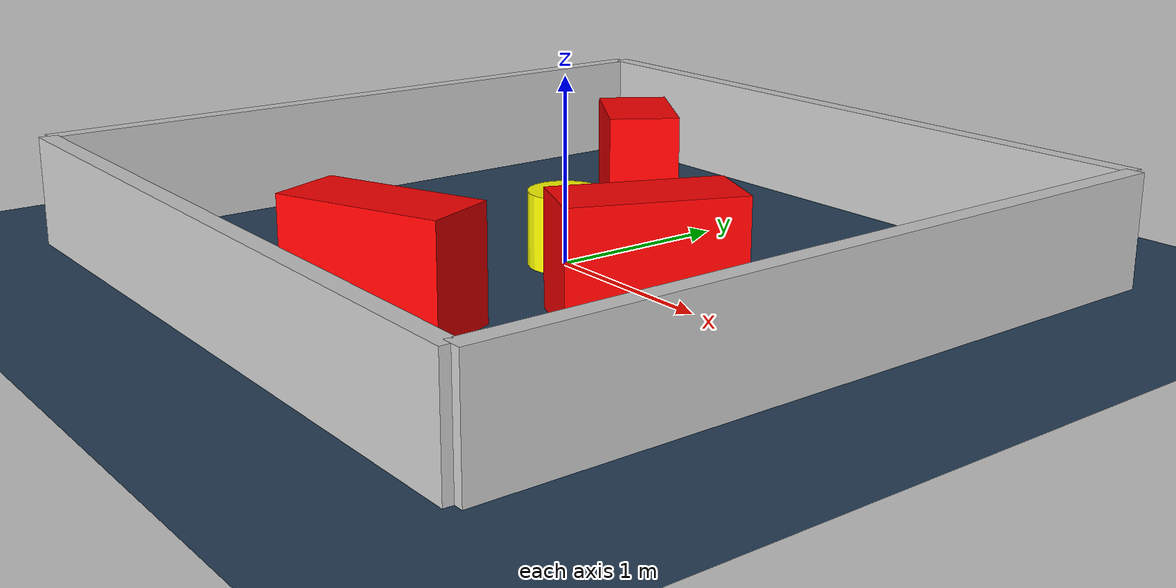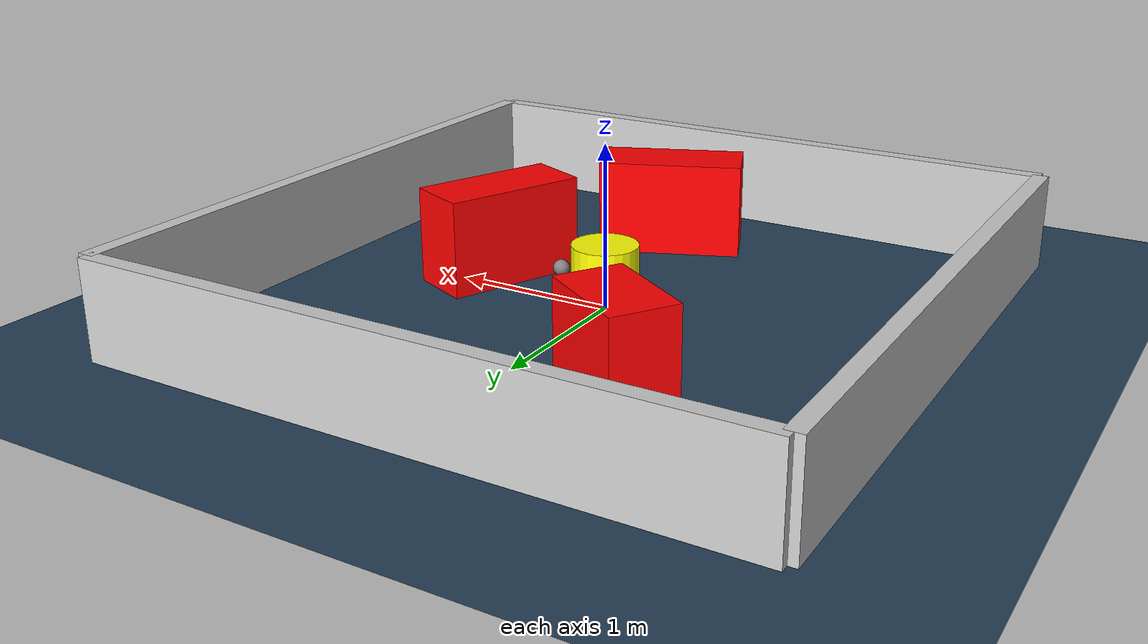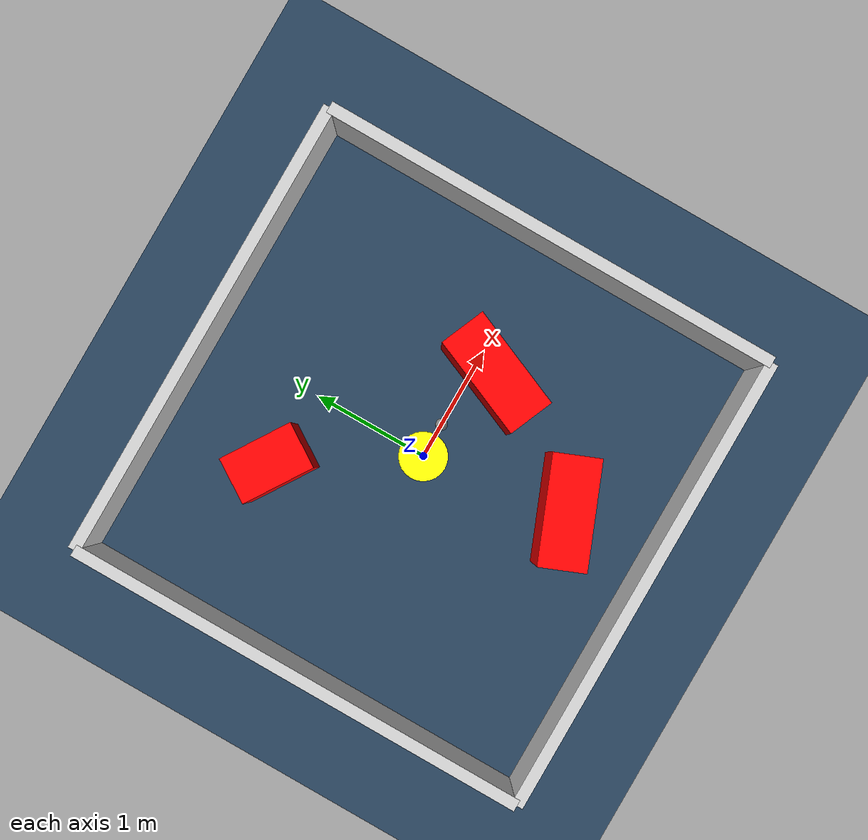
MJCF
<?xml version="1.0" ?>
<mujoco model="generated_environment">
  <option timestep="0.01" integrator="RK4" cone="elliptic"/>
  <default>
    <geom density="1"/>
  </default>
  <asset>
    <texture builtin="gradient" height="3072" rgb1="0.3 0.5 0.7" rgb2="0 0 0" type="skybox" width="512"/>
    <texture builtin="checker" height="300" mark="edge" markrgb="0.8 0.8 0.8" name="groundplane" rgb1="0.2 0.3 0.4" rgb2="0.1 0.2 0.3" type="2d" width="300"/>
    <material name="groundplane" reflectance="0.2" texrepeat="5 5" texture="groundplane" texuniform="true"/>
    <material name="robot" rgba="0.0 1.0 0.0 1"/>
  </asset>
  <worldbody>
    <light dir="0 0 -1" directional="true" pos="0 0 1.5"/>
    <geom condim="4" friction="1.0 0.005 0.001" material="groundplane" name="floor" size="0 0 0.05" type="plane"/>
    <body name="walls">
      <geom name="wall_1" condim="4" pos="-2.0 0.0 0.3" rgba="0.800000011920929 0.800000011920929 0.800000011920929 1.0" size="0.05 2.0 0.3" type="box"/>
      <geom name="wall_2" condim="4" pos="2.0 0.0 0.3" rgba="0.800000011920929 0.800000011920929 0.800000011920929 1.0" size="0.05 2.0 0.3" type="box"/>
      <geom name="wall_3" condim="4" pos="0.0 -2.0 0.3" rgba="0.800000011920929 0.800000011920929 0.800000011920929 1.0" size="2.0 0.05 0.3" type="box"/>
      <geom name="wall_4" condim="4" pos="0.0 2.0 0.3" rgba="0.800000011920929 0.800000011920929 0.800000011920929 1.0" size="2.0 0.05 0.3" type="box"/>
    </body>
    <body name="robot">
      <joint name="joint_x" type="slide" pos="0 0 0" axis="1 0 0"/>
      <joint name="joint_y" type="slide" pos="0 0 0" axis="0 1 0"/>
      <geom name="robot" type="sphere" pos="0.3 0.0 0.2" size="0.05" mass="5." friction="1.0 0.005 0.0001" condim="4" rgba="0.5 0.5 0.5 1.0"/>
      <site name="sensor_ball"/>
    </body>
    <body name="obstacle_movable_1">
      <geom name="obstacle_movable_1" condim="4" pos="0.0 0.0 0.2" euler="0 0 0.0" friction="1.0 0.005 0.001" rgba="1.0 1.0 0.0 1.0" size="0.2 0.2 0.0" type="cylinder" mass="0.1"/>
      <joint type="free"/>
    </body>
    <body name="obstacle_2_static">
      <geom name="obstacle_2_static" condim="4" pos="0.1914998051848642 -1.214510009637914 0.3" euler="0 0 202.01050517255553" friction="1.0 0.005 0.001" rgba="1 0 0 1" size="0.45506167978298584 0.2 0.3" type="box"/>
    </body>
    <body name="obstacle_3_static">
      <geom name="obstacle_3_static" condim="4" pos="-0.6581991071083308 1.0348050957000685 0.3" euler="0 0 327.2064786989704" friction="1.0 0.005 0.001" rgba="1 0 0 1" size="0.31233450285461434 0.2 0.3" type="box"/>
    </body>
    <body name="obstacle_4_static">
      <geom name="obstacle_4_static" condim="4" pos="0.8547950898605052 -0.17109363234926378 0.3" euler="0 0 67.06629113891229" friction="1.0 0.005 0.001" rgba="1 0 0 1" size="0.448430095170335 0.2 0.3" type="box"/>
    </body>
  </worldbody>
  <actuator>
    <motor name="actuator_x" joint="joint_x" gear="1" ctrlrange="-1 1"/>
    <motor name="actuator_y" joint="joint_y" gear="1" ctrlrange="-1 1"/>
  </actuator>
</mujoco>
